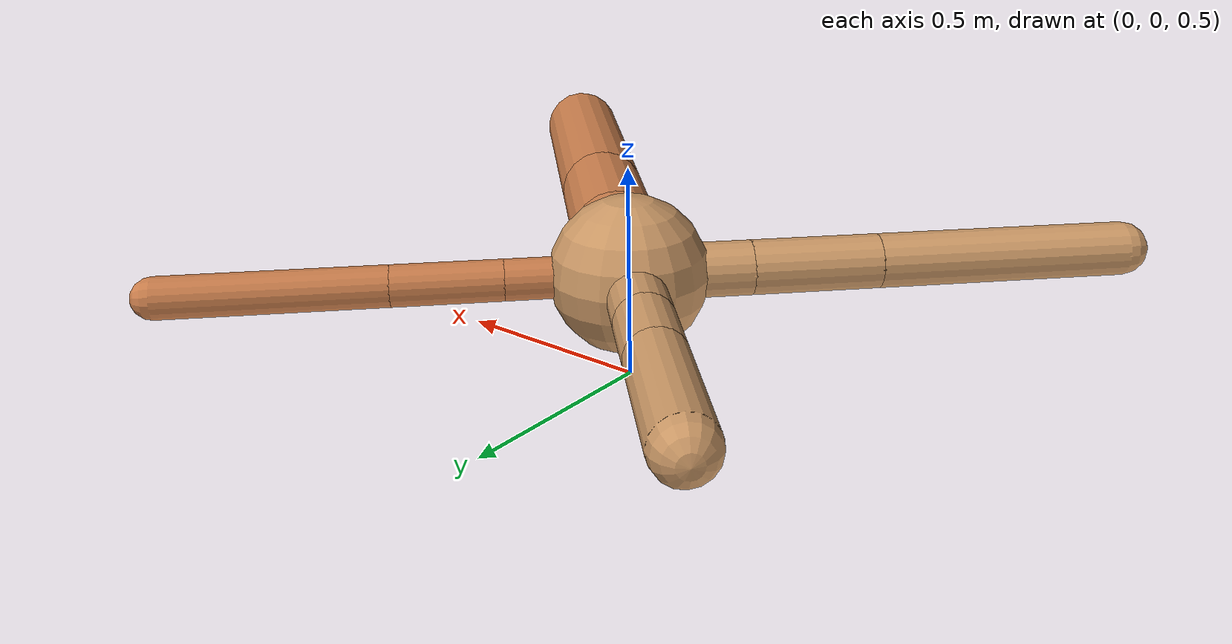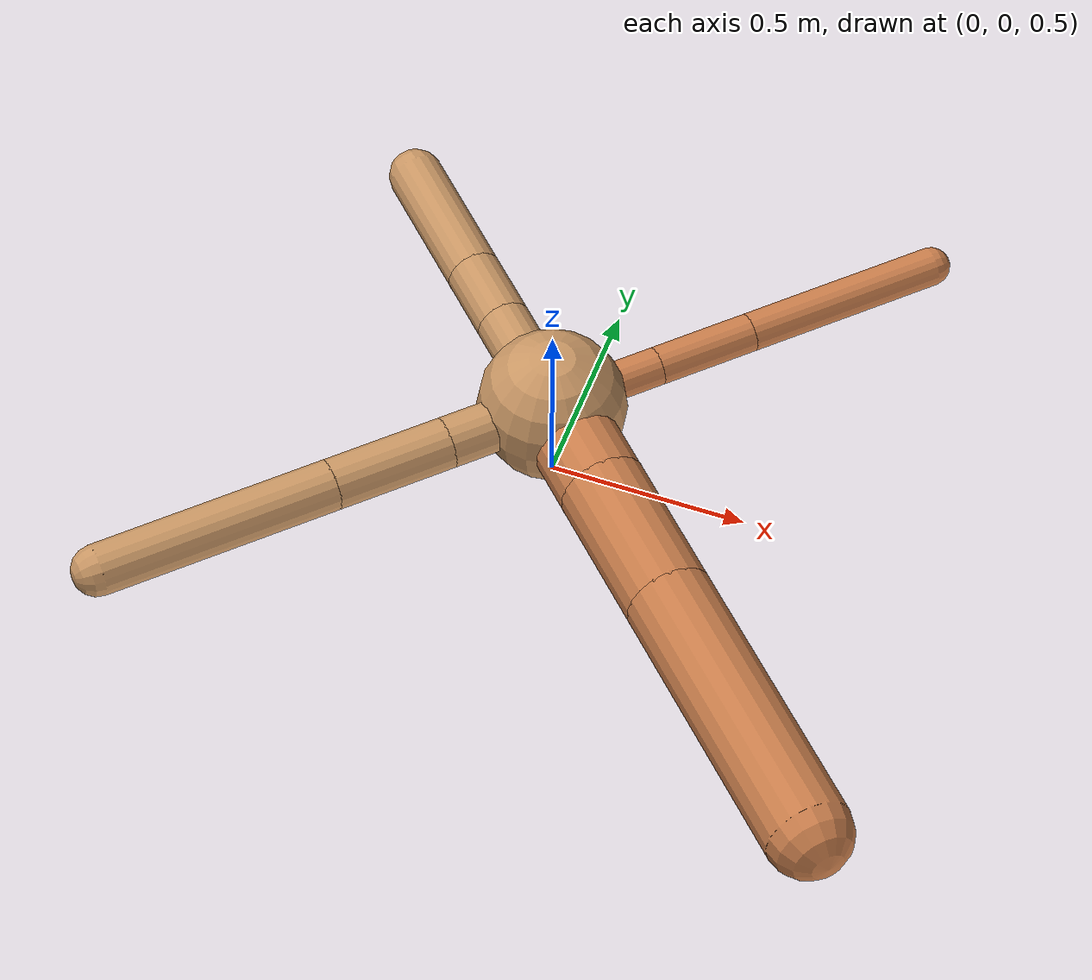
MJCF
<?xml version="1.0" ?>
<mujoco model="ant">

	<compiler angle="degree" coordinate="local" inertiafromgeom="true"/>

	<option integrator="RK4" timestep="0.01"/>

	<custom>

		<numeric data="0.0 0.0 0.55 1.0 0.0 0.0 0.0 0.0 1.0 0.0 -1.0 0.0 -1.0 0.0 1.0" name="init_qpos"/>

	</custom>

	<default>

		<joint armature="1" damping="1" limited="true"/>

		<geom conaffinity="0" condim="3" density="5.0" friction="1.5 0.1 0.1" margin="0.01" rgba="0.8 0.6 0.4 1"/>

	</default>

	<worldbody>

		<body name="torso" pos="0 0 0.75">

			<geom name="torso_geom" pos="0 0 0" size="0.18419832266216524" type="sphere"/>

			<!--joint armature="0" damping="0" limited="false" margin="0.01" name="root" pos="0 0 0" type="free"/-->

			<body name="front_left_leg" pos="0 0 0">

				<geom fromto="0 0 0 0.2 0.2 0" name="aux_1_geom" size="0.04804978787491823" type="capsule" rgba=".8 .5 .3 1"/>

				<body name="aux_1" pos="0.2 0.2 0">

					<joint axis="0 0 1" name="hip_1" pos="0.0 0.0 0.0" range="-40 40" type="hinge"/>

					<geom fromto="0 0 0 0.17821335458852192 0.17821335458852192 0" name="left_leg_geom" size="0.04804978787491823" type="capsule" rgba=".8 .5 .3 1"/>

					<body pos="0.17821335458852192 0.17821335458852192 0" name="front_left_foot">

						<joint axis="-1 1 0" name="ankle_1" pos="0.0 0.0 0.0" range="30 100" type="hinge"/>

						<geom fromto="0 0 0 0.35642670917704383 0.35642670917704383 0" name="left_ankle_geom" size="0.04804978787491823" type="capsule" rgba=".8 .5 .3 1"/>

					</body>

				</body>

			</body>

			<body name="front_right_leg" pos="0 0 0">

				<geom fromto="0 0 0 -0.2 0.2 0" name="aux_2_geom" size="0.06867504378536991" type="capsule"/>

				<body name="aux_2" pos="-0.2 0.2 0">

					<joint axis="0 0 1" name="hip_2" pos="0.0 0.0 0.0" range="-40 40" type="hinge"/>

					<geom fromto="0 0 0 -0.12434406913929555 0.12434406913929555 0" name="right_leg_geom" size="0.06867504378536991" type="capsule"/>

					<body pos="-0.12434406913929555 0.12434406913929555 0" name="front_right_foot">

						<joint axis="1 1 0" name="ankle_2" pos="0.0 0.0 0.0" range="-100 -30" type="hinge"/>

						<geom fromto="0 0 0 -0.2486881382785911 0.2486881382785911 0" name="right_ankle_geom" size="0.06867504378536991" type="capsule"/>

					</body>

				</body>

			</body>

			<body name="left_back_leg" pos="0 0 0">

				<geom fromto="0 0 0 -0.2 -0.2 0" name="aux_3_geom" size="0.06412665538395114" type="capsule"/>

				<body name="aux_3" pos="-0.2 -0.2 0">

					<joint axis="0 0 1" name="hip_3" pos="0.0 0.0 0.0" range="-40 40" type="hinge"/>

					<geom fromto="0 0 0 -0.21390027984600374 -0.21390027984600374 0" name="back_leg_geom" size="0.06412665538395114" type="capsule"/>

					<body pos="-0.21390027984600374 -0.21390027984600374 0" name="left_back_foot">

						<joint axis="-1 1 0" name="ankle_3" pos="0.0 0.0 0.0" range="-100 -30" type="hinge"/>

						<geom fromto="0 0 0 -0.4278005596920075 -0.4278005596920075 0" name="third_ankle_geom" size="0.06412665538395114" type="capsule"/>

					</body>

				</body>

			</body>

			<body name="right_back_leg" pos="0 0 0">

				<geom fromto="0 0 0 0.2 -0.2 0" name="aux_4_geom" size="0.10954205102280588" type="capsule" rgba=".8 .5 .3 1"/>

				<body name="aux_4" pos="0.2 -0.2 0">

					<joint axis="0 0 1" name="hip_4" pos="0.0 0.0 0.0" range="-40 40" type="hinge"/>

					<geom fromto="0 0 0 0.256602723515075 -0.256602723515075 0" name="rightback_leg_geom" size="0.10954205102280588" type="capsule" rgba=".8 .5 .3 1"/>

					<body pos="0.256602723515075 -0.256602723515075 0" name="right_back_foot">

						<joint axis="1 1 0" name="ankle_4" pos="0.0 0.0 0.0" range="30 100" type="hinge"/>

						<geom fromto="0 0 0 0.51320544703015 -0.51320544703015 0" name="fourth_ankle_geom" size="0.10954205102280588" type="capsule" rgba=".8 .5 .3 1"/>

					</body>

				</body>

			</body>

		</body>

	</worldbody>

	<actuator>

		<motor ctrllimited="true" ctrlrange="-1.0 1.0" joint="hip_4" gear="150"/>

		<motor ctrllimited="true" ctrlrange="-1.0 1.0" joint="ankle_4" gear="150"/>

		<motor ctrllimited="true" ctrlrange="-1.0 1.0" joint="hip_1" gear="150"/>

		<motor ctrllimited="true" ctrlrange="-1.0 1.0" joint="ankle_1" gear="150"/>

		<motor ctrllimited="true" ctrlrange="-1.0 1.0" joint="hip_2" gear="150"/>

		<motor ctrllimited="true" ctrlrange="-1.0 1.0" joint="ankle_2" gear="150"/>

		<motor ctrllimited="true" ctrlrange="-1.0 1.0" joint="hip_3" gear="150"/>

		<motor ctrllimited="true" ctrlrange="-1.0 1.0" joint="ankle_3" gear="150"/>

	</actuator>

</mujoco>
